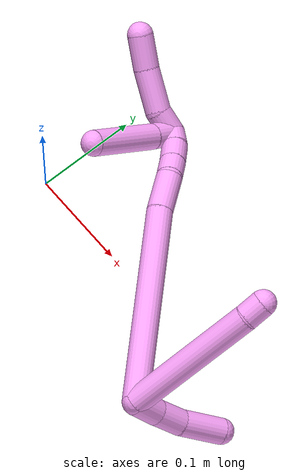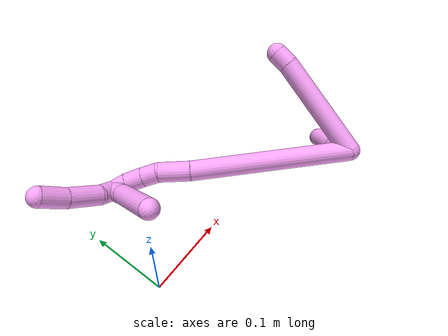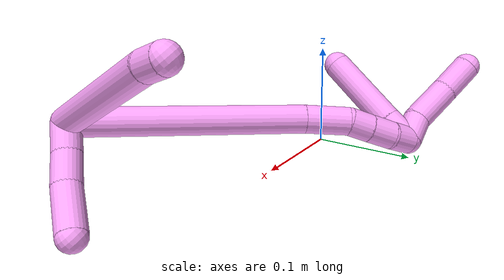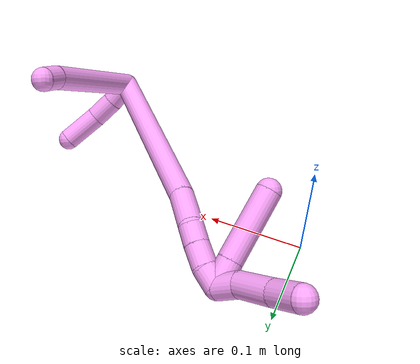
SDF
<sdf version="1.7">
 <world name="default">
  <model name="4">
   <static>0</static>
   <link name="4">
    <collision name="collision-cylinder-e_1_2_8">
     <pose>0.014783 0.063101 -0.001641 -1.5968 0.230053 -0.23606</pose>
     <geometry><cylinder><radius>0.0125</radius><length>0.12966</length></cylinder></geometry>
     <surface>
      <friction><ode><mu>1.16</mu><mu2>1.16</mu2><slip1>0</slip1><slip2>0</slip2></ode></friction>
      <contact><ode><kp>1e+06</kp><kd>1</kd><max_vel>0</max_vel><min_depth>0.001</min_depth></ode></contact>
     </surface>
    </collision>
    <visual name="visual-cylinder-e_1_2_8">
     <pose>0.014783 0.063101 -0.001641 -1.5968 0.230053 -0.23606</pose>
     <geometry><cylinder><radius>0.0125</radius><length>0.12966</length></cylinder></geometry>
     <material><ambient>1 0.65098 0.996078 1</ambient></material>
    </visual>
    <collision name="collision-cylinder-e_2_8_6">
     <pose>0.031472 0.136022 -0.005112 -1.75495 0.18852 -0.226578</pose>
     <geometry><cylinder><radius>0.0125</radius><length>0.02034</length></cylinder></geometry>
     <surface>
      <friction><ode><mu>1.16</mu><mu2>1.16</mu2><slip1>0</slip1><slip2>0</slip2></ode></friction>
      <contact><ode><kp>1e+06</kp><kd>1</kd><max_vel>0</max_vel><min_depth>0.001</min_depth></ode></contact>
     </surface>
    </collision>
    <visual name="visual-cylinder-e_2_8_6">
     <pose>0.031472 0.136022 -0.005112 -1.75495 0.18852 -0.226578</pose>
     <geometry><cylinder><radius>0.0125</radius><length>0.02034</length></cylinder></geometry>
     <material><ambient>1 0.65098 0.996078 1</ambient></material>
    </visual>
    <collision name="collision-cylinder-e_1_2_9">
     <pose>0.009956 -0.000918 -0.009519 3.04542 0.805526 2.91664</pose>
     <geometry><cylinder><radius>0.0125</radius><length>0.027609</length></cylinder></geometry>
     <surface>
      <friction><ode><mu>1.16</mu><mu2>1.16</mu2><slip1>0</slip1><slip2>0</slip2></ode></friction>
      <contact><ode><kp>1e+06</kp><kd>1</kd><max_vel>0</max_vel><min_depth>0.001</min_depth></ode></contact>
     </surface>
    </collision>
    <visual name="visual-cylinder-e_1_2_9">
     <pose>0.009956 -0.000918 -0.009519 3.04542 0.805526 2.91664</pose>
     <geometry><cylinder><radius>0.0125</radius><length>0.027609</length></cylinder></geometry>
     <material><ambient>1 0.65098 0.996078 1</ambient></material>
    </visual>
    <collision name="collision-cylinder-e_2_9_10">
     <pose>0.031096 -0.001567 -0.028035 -3.11165 0.893121 -3.07908</pose>
     <geometry><cylinder><radius>0.0125</radius><length>0.028714</length></cylinder></geometry>
     <surface>
      <friction><ode><mu>1.16</mu><mu2>1.16</mu2><slip1>0</slip1><slip2>0</slip2></ode></friction>
      <contact><ode><kp>1e+06</kp><kd>1</kd><max_vel>0</max_vel><min_depth>0.001</min_depth></ode></contact>
     </surface>
    </collision>
    <visual name="visual-cylinder-e_2_9_10">
     <pose>0.031096 -0.001567 -0.028035 -3.11165 0.893121 -3.07908</pose>
     <geometry><cylinder><radius>0.0125</radius><length>0.028714</length></cylinder></geometry>
     <material><ambient>1 0.65098 0.996078 1</ambient></material>
    </visual>
    <collision name="collision-cylinder-e_3_10_5">
     <pose>0.059039 0.003211 -0.050289 -2.81376 0.874787 -2.46162</pose>
     <geometry><cylinder><radius>0.0125</radius><length>0.043678</length></cylinder></geometry>
     <surface>
      <friction><ode><mu>1.16</mu><mu2>1.16</mu2><slip1>0</slip1><slip2>0</slip2></ode></friction>
      <contact><ode><kp>1e+06</kp><kd>1</kd><max_vel>0</max_vel><min_depth>0.001</min_depth></ode></contact>
     </surface>
    </collision>
    <visual name="visual-cylinder-e_3_10_5">
     <pose>0.059039 0.003211 -0.050289 -2.81376 0.874787 -2.46162</pose>
     <geometry><cylinder><radius>0.0125</radius><length>0.043678</length></cylinder></geometry>
     <material><ambient>1 0.65098 0.996078 1</ambient></material>
    </visual>
    <collision name="collision-cylinder-e_1_2_11">
     <pose>-0.048875 0.057321 -0.063825 -2.40983 -0.517863 1.20979</pose>
     <geometry><cylinder><radius>0.0125</radius><length>0.197463</length></cylinder></geometry>
     <surface>
      <friction><ode><mu>1.16</mu><mu2>1.16</mu2><slip1>0</slip1><slip2>0</slip2></ode></friction>
      <contact><ode><kp>1e+06</kp><kd>1</kd><max_vel>0</max_vel><min_depth>0.001</min_depth></ode></contact>
     </surface>
    </collision>
    <visual name="visual-cylinder-e_1_2_11">
     <pose>-0.048875 0.057321 -0.063825 -2.40983 -0.517863 1.20979</pose>
     <geometry><cylinder><radius>0.0125</radius><length>0.197463</length></cylinder></geometry>
     <material><ambient>1 0.65098 0.996078 1</ambient></material>
    </visual>
    <collision name="collision-cylinder-e_2_11_12">
     <pose>-0.105174 0.126818 -0.140909 -2.39875 -0.391178 0.941096</pose>
     <geometry><cylinder><radius>0.0125</radius><length>0.038948</length></cylinder></geometry>
     <surface>
      <friction><ode><mu>1.16</mu><mu2>1.16</mu2><slip1>0</slip1><slip2>0</slip2></ode></friction>
      <contact><ode><kp>1e+06</kp><kd>1</kd><max_vel>0</max_vel><min_depth>0.001</min_depth></ode></contact>
     </surface>
    </collision>
    <visual name="visual-cylinder-e_2_11_12">
     <pose>-0.105174 0.126818 -0.140909 -2.39875 -0.391178 0.941096</pose>
     <geometry><cylinder><radius>0.0125</radius><length>0.038948</length></cylinder></geometry>
     <material><ambient>1 0.65098 0.996078 1</ambient></material>
    </visual>
    <collision name="collision-cylinder-e_3_12_13">
     <pose>-0.11617 0.142822 -0.16284 -2.72597 -0.360326 1.42491</pose>
     <geometry><cylinder><radius>0.0125</radius><length>0.020256</length></cylinder></geometry>
     <surface>
      <friction><ode><mu>1.16</mu><mu2>1.16</mu2><slip1>0</slip1><slip2>0</slip2></ode></friction>
      <contact><ode><kp>1e+06</kp><kd>1</kd><max_vel>0</max_vel><min_depth>0.001</min_depth></ode></contact>
     </surface>
    </collision>
    <visual name="visual-cylinder-e_3_12_13">
     <pose>-0.11617 0.142822 -0.16284 -2.72597 -0.360326 1.42491</pose>
     <geometry><cylinder><radius>0.0125</radius><length>0.020256</length></cylinder></geometry>
     <material><ambient>1 0.65098 0.996078 1</ambient></material>
    </visual>
    <collision name="collision-cylinder-e_4_13_14">
     <pose>-0.124287 0.150631 -0.18114 -2.74951 -0.411351 1.62006</pose>
     <geometry><cylinder><radius>0.0125</radius><length>0.022739</length></cylinder></geometry>
     <surface>
      <friction><ode><mu>1.16</mu><mu2>1.16</mu2><slip1>0</slip1><slip2>0</slip2></ode></friction>
      <contact><ode><kp>1e+06</kp><kd>1</kd><max_vel>0</max_vel><min_depth>0.001</min_depth></ode></contact>
     </surface>
    </collision>
    <visual name="visual-cylinder-e_4_13_14">
     <pose>-0.124287 0.150631 -0.18114 -2.74951 -0.411351 1.62006</pose>
     <geometry><cylinder><radius>0.0125</radius><length>0.022739</length></cylinder></geometry>
     <material><ambient>1 0.65098 0.996078 1</ambient></material>
    </visual>
    <collision name="collision-cylinder-e_5_14_1">
     <pose>-0.134711 0.156843 -0.198925 -2.87458 -0.607523 2.33199</pose>
     <geometry><cylinder><radius>0.0125</radius><length>0.020594</length></cylinder></geometry>
     <surface>
      <friction><ode><mu>1.16</mu><mu2>1.16</mu2><slip1>0</slip1><slip2>0</slip2></ode></friction>
      <contact><ode><kp>1e+06</kp><kd>1</kd><max_vel>0</max_vel><min_depth>0.001</min_depth></ode></contact>
     </surface>
    </collision>
    <visual name="visual-cylinder-e_5_14_1">
     <pose>-0.134711 0.156843 -0.198925 -2.87458 -0.607523 2.33199</pose>
     <geometry><cylinder><radius>0.0125</radius><length>0.020594</length></cylinder></geometry>
     <material><ambient>1 0.65098 0.996078 1</ambient></material>
    </visual>
    <collision name="collision-cylinder-e_1_1_15">
     <pose>-0.145935 0.154605 -0.195975 0.382607 -0.420014 -0.082516</pose>
     <geometry><cylinder><radius>0.0125</radius><length>0.02622</length></cylinder></geometry>
     <surface>
      <friction><ode><mu>1.16</mu><mu2>1.16</mu2><slip1>0</slip1><slip2>0</slip2></ode></friction>
      <contact><ode><kp>1e+06</kp><kd>1</kd><max_vel>0</max_vel><min_depth>0.001</min_depth></ode></contact>
     </surface>
    </collision>
    <visual name="visual-cylinder-e_1_1_15">
     <pose>-0.145935 0.154605 -0.195975 0.382607 -0.420014 -0.082516</pose>
     <geometry><cylinder><radius>0.0125</radius><length>0.02622</length></cylinder></geometry>
     <material><ambient>1 0.65098 0.996078 1</ambient></material>
    </visual>
    <collision name="collision-cylinder-e_2_15_4">
     <pose>-0.168163 0.138481 -0.154211 0.363268 -0.475338 -0.088923</pose>
     <geometry><cylinder><radius>0.0125</radius><length>0.07378</length></cylinder></geometry>
     <surface>
      <friction><ode><mu>1.16</mu><mu2>1.16</mu2><slip1>0</slip1><slip2>0</slip2></ode></friction>
      <contact><ode><kp>1e+06</kp><kd>1</kd><max_vel>0</max_vel><min_depth>0.001</min_depth></ode></contact>
     </surface>
    </collision>
    <visual name="visual-cylinder-e_2_15_4">
     <pose>-0.168163 0.138481 -0.154211 0.363268 -0.475338 -0.088923</pose>
     <geometry><cylinder><radius>0.0125</radius><length>0.07378</length></cylinder></geometry>
     <material><ambient>1 0.65098 0.996078 1</ambient></material>
    </visual>
    <collision name="collision-cylinder-e_1_1_16">
     <pose>-0.151775 0.163577 -0.204689 -1.08253 -1.14314 0.737897</pose>
     <geometry><cylinder><radius>0.0125</radius><length>0.024588</length></cylinder></geometry>
     <surface>
      <friction><ode><mu>1.16</mu><mu2>1.16</mu2><slip1>0</slip1><slip2>0</slip2></ode></friction>
      <contact><ode><kp>1e+06</kp><kd>1</kd><max_vel>0</max_vel><min_depth>0.001</min_depth></ode></contact>
     </surface>
    </collision>
    <visual name="visual-cylinder-e_1_1_16">
     <pose>-0.151775 0.163577 -0.204689 -1.08253 -1.14314 0.737897</pose>
     <geometry><cylinder><radius>0.0125</radius><length>0.024588</length></cylinder></geometry>
     <material><ambient>1 0.65098 0.996078 1</ambient></material>
    </visual>
    <collision name="collision-cylinder-e_2_16_17">
     <pose>-0.179888 0.180669 -0.202573 -1.59269 -0.931174 0.94886</pose>
     <geometry><cylinder><radius>0.0125</radius><length>0.042192</length></cylinder></geometry>
     <surface>
      <friction><ode><mu>1.16</mu><mu2>1.16</mu2><slip1>0</slip1><slip2>0</slip2></ode></friction>
      <contact><ode><kp>1e+06</kp><kd>1</kd><max_vel>0</max_vel><min_depth>0.001</min_depth></ode></contact>
     </surface>
    </collision>
    <visual name="visual-cylinder-e_2_16_17">
     <pose>-0.179888 0.180669 -0.202573 -1.59269 -0.931174 0.94886</pose>
     <geometry><cylinder><radius>0.0125</radius><length>0.042192</length></cylinder></geometry>
     <material><ambient>1 0.65098 0.996078 1</ambient></material>
    </visual>
    <collision name="collision-cylinder-e_3_17_3">
     <pose>-0.208974 0.204543 -0.202034 -1.49879 -0.82139 0.769927</pose>
     <geometry><cylinder><radius>0.0125</radius><length>0.033221</length></cylinder></geometry>
     <surface>
      <friction><ode><mu>1.16</mu><mu2>1.16</mu2><slip1>0</slip1><slip2>0</slip2></ode></friction>
      <contact><ode><kp>1e+06</kp><kd>1</kd><max_vel>0</max_vel><min_depth>0.001</min_depth></ode></contact>
     </surface>
    </collision>
    <visual name="visual-cylinder-e_3_17_3">
     <pose>-0.208974 0.204543 -0.202034 -1.49879 -0.82139 0.769927</pose>
     <geometry><cylinder><radius>0.0125</radius><length>0.033221</length></cylinder></geometry>
     <material><ambient>1 0.65098 0.996078 1</ambient></material>
    </visual>
    <collision name="collision-sphere-3">
     <pose>-0.221134 0.215829 -0.20122 0 -0 0</pose>
     <geometry><sphere><radius>0.0125</radius></sphere></geometry>
     <surface>
      <friction><ode><mu>1.16</mu><mu2>1.16</mu2><slip1>0</slip1><slip2>0</slip2></ode></friction>
      <contact><ode><kp>1e+06</kp><kd>1</kd><max_vel>0</max_vel><min_depth>0.001</min_depth></ode></contact>
     </surface>
    </collision>
    <visual name="visual-sphere-3">
     <pose>-0.221134 0.215829 -0.20122 0 -0 0</pose>
     <geometry><sphere><radius>0.0125</radius></sphere></geometry>
     <material><ambient>1 0.65098 0.996078 1</ambient></material>
    </visual>
    <collision name="collision-sphere-17">
     <pose>-0.196813 0.193258 -0.202848 0 -0 0</pose>
     <geometry><sphere><radius>0.0125</radius></sphere></geometry>
     <surface>
      <friction><ode><mu>1.16</mu><mu2>1.16</mu2><slip1>0</slip1><slip2>0</slip2></ode></friction>
      <contact><ode><kp>1e+06</kp><kd>1</kd><max_vel>0</max_vel><min_depth>0.001</min_depth></ode></contact>
     </surface>
    </collision>
    <visual name="visual-sphere-17">
     <pose>-0.196813 0.193258 -0.202848 0 -0 0</pose>
     <geometry><sphere><radius>0.0125</radius></sphere></geometry>
     <material><ambient>1 0.65098 0.996078 1</ambient></material>
    </visual>
    <collision name="collision-sphere-16">
     <pose>-0.162962 0.16808 -0.202297 0 -0 0</pose>
     <geometry><sphere><radius>0.0125</radius></sphere></geometry>
     <surface>
      <friction><ode><mu>1.16</mu><mu2>1.16</mu2><slip1>0</slip1><slip2>0</slip2></ode></friction>
      <contact><ode><kp>1e+06</kp><kd>1</kd><max_vel>0</max_vel><min_depth>0.001</min_depth></ode></contact>
     </surface>
    </collision>
    <visual name="visual-sphere-16">
     <pose>-0.162962 0.16808 -0.202297 0 -0 0</pose>
     <geometry><sphere><radius>0.0125</radius></sphere></geometry>
     <material><ambient>1 0.65098 0.996078 1</ambient></material>
    </visual>
    <collision name="collision-sphere-4">
     <pose>-0.185045 0.126826 -0.123551 0 -0 0</pose>
     <geometry><sphere><radius>0.0125</radius></sphere></geometry>
     <surface>
      <friction><ode><mu>1.16</mu><mu2>1.16</mu2><slip1>0</slip1><slip2>0</slip2></ode></friction>
      <contact><ode><kp>1e+06</kp><kd>1</kd><max_vel>0</max_vel><min_depth>0.001</min_depth></ode></contact>
     </surface>
    </collision>
    <visual name="visual-sphere-4">
     <pose>-0.185045 0.126826 -0.123551 0 -0 0</pose>
     <geometry><sphere><radius>0.0125</radius></sphere></geometry>
     <material><ambient>1 0.65098 0.996078 1</ambient></material>
    </visual>
    <collision name="collision-sphere-15">
     <pose>-0.151281 0.150136 -0.184871 0 -0 0</pose>
     <geometry><sphere><radius>0.0125</radius></sphere></geometry>
     <surface>
      <friction><ode><mu>1.16</mu><mu2>1.16</mu2><slip1>0</slip1><slip2>0</slip2></ode></friction>
      <contact><ode><kp>1e+06</kp><kd>1</kd><max_vel>0</max_vel><min_depth>0.001</min_depth></ode></contact>
     </surface>
    </collision>
    <visual name="visual-sphere-15">
     <pose>-0.151281 0.150136 -0.184871 0 -0 0</pose>
     <geometry><sphere><radius>0.0125</radius></sphere></geometry>
     <material><ambient>1 0.65098 0.996078 1</ambient></material>
    </visual>
    <collision name="collision-sphere-1">
     <pose>-0.140589 0.159074 -0.20708 0 -0 0</pose>
     <geometry><sphere><radius>0.0125</radius></sphere></geometry>
     <surface>
      <friction><ode><mu>1.16</mu><mu2>1.16</mu2><slip1>0</slip1><slip2>0</slip2></ode></friction>
      <contact><ode><kp>1e+06</kp><kd>1</kd><max_vel>0</max_vel><min_depth>0.001</min_depth></ode></contact>
     </surface>
    </collision>
    <visual name="visual-sphere-1">
     <pose>-0.140589 0.159074 -0.20708 0 -0 0</pose>
     <geometry><sphere><radius>0.0125</radius></sphere></geometry>
     <material><ambient>1 0.65098 0.996078 1</ambient></material>
    </visual>
    <collision name="collision-sphere-14">
     <pose>-0.128833 0.154613 -0.190771 0 -0 0</pose>
     <geometry><sphere><radius>0.0125</radius></sphere></geometry>
     <surface>
      <friction><ode><mu>1.16</mu><mu2>1.16</mu2><slip1>0</slip1><slip2>0</slip2></ode></friction>
      <contact><ode><kp>1e+06</kp><kd>1</kd><max_vel>0</max_vel><min_depth>0.001</min_depth></ode></contact>
     </surface>
    </collision>
    <visual name="visual-sphere-14">
     <pose>-0.128833 0.154613 -0.190771 0 -0 0</pose>
     <geometry><sphere><radius>0.0125</radius></sphere></geometry>
     <material><ambient>1 0.65098 0.996078 1</ambient></material>
    </visual>
    <collision name="collision-sphere-13">
     <pose>-0.119741 0.146649 -0.17151 0 -0 0</pose>
     <geometry><sphere><radius>0.0125</radius></sphere></geometry>
     <surface>
      <friction><ode><mu>1.16</mu><mu2>1.16</mu2><slip1>0</slip1><slip2>0</slip2></ode></friction>
      <contact><ode><kp>1e+06</kp><kd>1</kd><max_vel>0</max_vel><min_depth>0.001</min_depth></ode></contact>
     </surface>
    </collision>
    <visual name="visual-sphere-13">
     <pose>-0.119741 0.146649 -0.17151 0 -0 0</pose>
     <geometry><sphere><radius>0.0125</radius></sphere></geometry>
     <material><ambient>1 0.65098 0.996078 1</ambient></material>
    </visual>
    <collision name="collision-sphere-12">
     <pose>-0.112599 0.138995 -0.154169 0 -0 0</pose>
     <geometry><sphere><radius>0.0125</radius></sphere></geometry>
     <surface>
      <friction><ode><mu>1.16</mu><mu2>1.16</mu2><slip1>0</slip1><slip2>0</slip2></ode></friction>
      <contact><ode><kp>1e+06</kp><kd>1</kd><max_vel>0</max_vel><min_depth>0.001</min_depth></ode></contact>
     </surface>
    </collision>
    <visual name="visual-sphere-12">
     <pose>-0.112599 0.138995 -0.154169 0 -0 0</pose>
     <geometry><sphere><radius>0.0125</radius></sphere></geometry>
     <material><ambient>1 0.65098 0.996078 1</ambient></material>
    </visual>
    <collision name="collision-sphere-11">
     <pose>-0.097749 0.114641 -0.127649 0 -0 0</pose>
     <geometry><sphere><radius>0.0125</radius></sphere></geometry>
     <surface>
      <friction><ode><mu>1.16</mu><mu2>1.16</mu2><slip1>0</slip1><slip2>0</slip2></ode></friction>
      <contact><ode><kp>1e+06</kp><kd>1</kd><max_vel>0</max_vel><min_depth>0.001</min_depth></ode></contact>
     </surface>
    </collision>
    <visual name="visual-sphere-11">
     <pose>-0.097749 0.114641 -0.127649 0 -0 0</pose>
     <geometry><sphere><radius>0.0125</radius></sphere></geometry>
     <material><ambient>1 0.65098 0.996078 1</ambient></material>
    </visual>
    <collision name="collision-sphere-8">
     <pose>0.029566 0.126202 -0.003283 0 -0 0</pose>
     <geometry><sphere><radius>0.0125</radius></sphere></geometry>
     <surface>
      <friction><ode><mu>1.16</mu><mu2>1.16</mu2><slip1>0</slip1><slip2>0</slip2></ode></friction>
      <contact><ode><kp>1e+06</kp><kd>1</kd><max_vel>0</max_vel><min_depth>0.001</min_depth></ode></contact>
     </surface>
    </collision>
    <visual name="visual-sphere-8">
     <pose>0.029566 0.126202 -0.003283 0 -0 0</pose>
     <geometry><sphere><radius>0.0125</radius></sphere></geometry>
     <material><ambient>1 0.65098 0.996078 1</ambient></material>
    </visual>
    <collision name="collision-sphere-2">
     <geometry><sphere><radius>0.0125</radius></sphere></geometry>
     <surface>
      <friction><ode><mu>1.16</mu><mu2>1.16</mu2><slip1>0</slip1><slip2>0</slip2></ode></friction>
      <contact><ode><kp>1e+06</kp><kd>1</kd><max_vel>0</max_vel><min_depth>0.001</min_depth></ode></contact>
     </surface>
    </collision>
    <visual name="visual-sphere-2">
     <geometry><sphere><radius>0.0125</radius></sphere></geometry>
     <material><ambient>1 0.65098 0.996078 1</ambient></material>
    </visual>
    <collision name="collision-sphere-9">
     <pose>0.019911 -0.001837 -0.019037 0 -0 0</pose>
     <geometry><sphere><radius>0.0125</radius></sphere></geometry>
     <surface>
      <friction><ode><mu>1.16</mu><mu2>1.16</mu2><slip1>0</slip1><slip2>0</slip2></ode></friction>
      <contact><ode><kp>1e+06</kp><kd>1</kd><max_vel>0</max_vel><min_depth>0.001</min_depth></ode></contact>
     </surface>
    </collision>
    <visual name="visual-sphere-9">
     <pose>0.019911 -0.001837 -0.019037 0 -0 0</pose>
     <geometry><sphere><radius>0.0125</radius></sphere></geometry>
     <material><ambient>1 0.65098 0.996078 1</ambient></material>
    </visual>
    <collision name="collision-sphere-6">
     <pose>0.033378 0.145843 -0.006941 0 -0 0</pose>
     <geometry><sphere><radius>0.0125</radius></sphere></geometry>
     <surface>
      <friction><ode><mu>1.16</mu><mu2>1.16</mu2><slip1>0</slip1><slip2>0</slip2></ode></friction>
      <contact><ode><kp>1e+06</kp><kd>1</kd><max_vel>0</max_vel><min_depth>0.001</min_depth></ode></contact>
     </surface>
    </collision>
    <visual name="visual-sphere-6">
     <pose>0.033378 0.145843 -0.006941 0 -0 0</pose>
     <geometry><sphere><radius>0.0125</radius></sphere></geometry>
     <material><ambient>1 0.65098 0.996078 1</ambient></material>
    </visual>
    <collision name="collision-sphere-10">
     <pose>0.04228 -0.001298 -0.037032 0 -0 0</pose>
     <geometry><sphere><radius>0.0125</radius></sphere></geometry>
     <surface>
      <friction><ode><mu>1.16</mu><mu2>1.16</mu2><slip1>0</slip1><slip2>0</slip2></ode></friction>
      <contact><ode><kp>1e+06</kp><kd>1</kd><max_vel>0</max_vel><min_depth>0.001</min_depth></ode></contact>
     </surface>
    </collision>
    <visual name="visual-sphere-10">
     <pose>0.04228 -0.001298 -0.037032 0 -0 0</pose>
     <geometry><sphere><radius>0.0125</radius></sphere></geometry>
     <material><ambient>1 0.65098 0.996078 1</ambient></material>
    </visual>
    <collision name="collision-sphere-5">
     <pose>0.075799 0.00772 -0.063545 0 -0 0</pose>
     <geometry><sphere><radius>0.0125</radius></sphere></geometry>
     <surface>
      <friction><ode><mu>1.16</mu><mu2>1.16</mu2><slip1>0</slip1><slip2>0</slip2></ode></friction>
      <contact><ode><kp>1e+06</kp><kd>1</kd><max_vel>0</max_vel><min_depth>0.001</min_depth></ode></contact>
     </surface>
    </collision>
    <visual name="visual-sphere-5">
     <pose>0.075799 0.00772 -0.063545 0 -0 0</pose>
     <geometry><sphere><radius>0.0125</radius></sphere></geometry>
     <material><ambient>1 0.65098 0.996078 1</ambient></material>
    </visual>
    <inertial>
     <pose>-0.066526 0.092713 -0.093325 0 -0 0</pose>
     <mass>0.75</mass>
     <inertia>
      <ixx>0.000894</ixx>
      <ixy>0</ixy>
      <ixz>0</ixz>
      <iyy>0.000616</iyy>
      <iyz>0</iyz>
      <izz>-0.000277</izz>
     </inertia>
    </inertial>
   </link>
   <pose>0.253636 -0.096266 0.077551 0.64368 0.21252 0.221384</pose>
  </model>
 </world>
</sdf>
